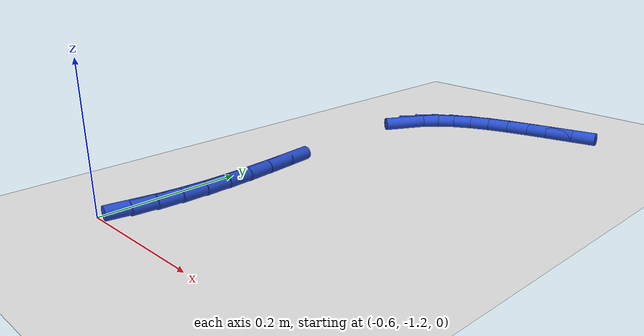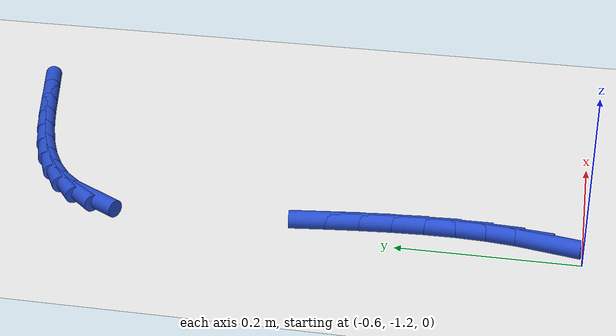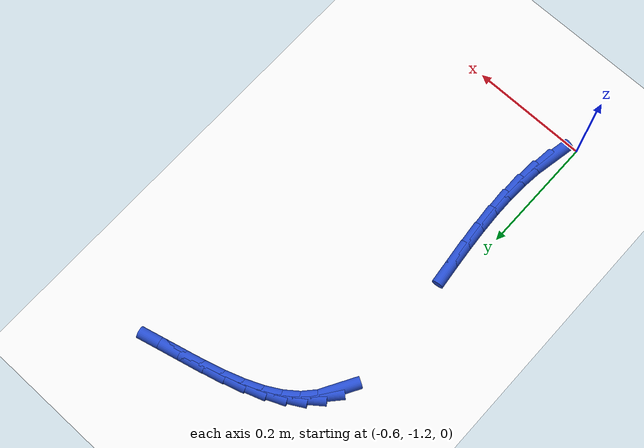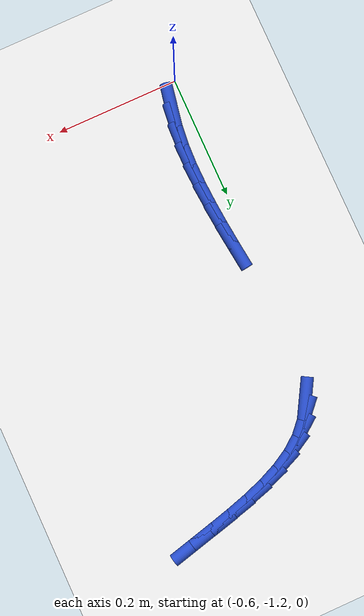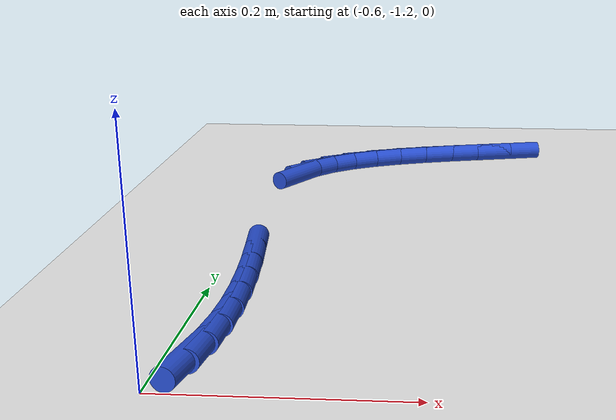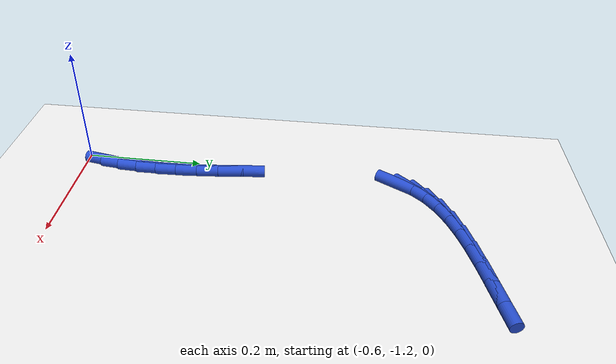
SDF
<sdf version="1.6">
 <world name="default">
  <model name="ground_plane">
   <static>1</static>
   <link name="link">
    <collision name="collision">
     <geometry><plane><normal>0 0 1</normal><size>100 100</size></plane></geometry>
     <surface><friction><ode><mu>100</mu><mu2>50</mu2></ode></friction></surface>
    </collision>
    <visual name="visual">
     <cast_shadows>0</cast_shadows>
     <geometry><plane><normal>0 0 1</normal><size>100 100</size></plane></geometry>
     <material>
      <script><uri>file://media/materials/scripts/gazebo.material</uri><name>Gazebo/WhiteGlow</name></script>
     </material>
    </visual>
   </link>
  </model>
  <model name="line">
   <link name="link_245">
    <pose>-0.5765604240427848 -1.1591229905376372 0.01 0 1.57 1.382976978537338</pose>
    <collision name="collision">
     <geometry><cylinder><radius>0.01</radius><length>0.08</length></cylinder></geometry>
    </collision>
    <visual name="visual">
     <material>
      <script><name>Gazebo/Blue</name><uri>file://media/materials/scripts/gazebo.material</uri></script>
     </material>
     <geometry><cylinder><radius>0.01</radius><length>0.08</length></cylinder></geometry>
    </visual>
   </link>
   <link name="link_246">
    <pose>-0.5707570217833462 -1.1285883262080334 0.01 0 1.57 1.464260709445847</pose>
    <collision name="collision">
     <geometry><cylinder><radius>0.01</radius><length>0.08</length></cylinder></geometry>
    </collision>
    <visual name="visual">
     <material>
      <script><name>Gazebo/Blue</name><uri>file://media/materials/scripts/gazebo.material</uri></script>
     </material>
     <geometry><cylinder><radius>0.01</radius><length>0.08</length></cylinder></geometry>
    </visual>
   </link>
   <link name="link_247">
    <pose>-0.5673265284493424 -1.096509805672998 0.01 0 1.57 1.529926441892967</pose>
    <collision name="collision">
     <geometry><cylinder><radius>0.01</radius><length>0.08</length></cylinder></geometry>
    </collision>
    <visual name="visual">
     <material>
      <script><name>Gazebo/Blue</name><uri>file://media/materials/scripts/gazebo.material</uri></script>
     </material>
     <geometry><cylinder><radius>0.01</radius><length>0.08</length></cylinder></geometry>
    </visual>
   </link>
   <link name="link_248">
    <pose>-0.5659602852207755 -1.0630993263725452 0.01 0 1.57 -1.5595213351210204</pose>
    <collision name="collision">
     <geometry><cylinder><radius>0.01</radius><length>0.08</length></cylinder></geometry>
    </collision>
    <visual name="visual">
     <material>
      <script><name>Gazebo/Blue</name><uri>file://media/materials/scripts/gazebo.material</uri></script>
     </material>
     <geometry><cylinder><radius>0.01</radius><length>0.08</length></cylinder></geometry>
    </visual>
   </link>
   <link name="link_249">
    <pose>-0.566349633277647 -1.0285687857466836 0.01 0 1.57 -1.5190269463461985</pose>
    <collision name="collision">
     <geometry><cylinder><radius>0.01</radius><length>0.08</length></cylinder></geometry>
    </collision>
    <visual name="visual">
     <material>
      <script><name>Gazebo/Blue</name><uri>file://media/materials/scripts/gazebo.material</uri></script>
     </material>
     <geometry><cylinder><radius>0.01</radius><length>0.08</length></cylinder></geometry>
    </visual>
   </link>
   <link name="link_250">
    <pose>-0.5681859137999584 -0.9931300812354266 0.01 0 1.57 -1.4886636304953684</pose>
    <collision name="collision">
     <geometry><cylinder><radius>0.01</radius><length>0.08</length></cylinder></geometry>
    </collision>
    <visual name="visual">
     <material>
      <script><name>Gazebo/Blue</name><uri>file://media/materials/scripts/gazebo.material</uri></script>
     </material>
     <geometry><cylinder><radius>0.01</radius><length>0.08</length></cylinder></geometry>
    </visual>
   </link>
   <link name="link_251">
    <pose>-0.5711604679677119 -0.956995110278786 0.01 0 1.57 -1.4672834788706057</pose>
    <collision name="collision">
     <geometry><cylinder><radius>0.01</radius><length>0.08</length></cylinder></geometry>
    </collision>
    <visual name="visual">
     <material>
      <script><name>Gazebo/Blue</name><uri>file://media/materials/scripts/gazebo.material</uri></script>
     </material>
     <geometry><cylinder><radius>0.01</radius><length>0.08</length></cylinder></geometry>
    </visual>
   </link>
   <link name="link_252">
    <pose>-0.5749646369609089 -0.9203757703167742 0.01 0 1.57 -1.4543100480095463</pose>
    <collision name="collision">
     <geometry><cylinder><radius>0.01</radius><length>0.08</length></cylinder></geometry>
    </collision>
    <visual name="visual">
     <material>
      <script><name>Gazebo/Blue</name><uri>file://media/materials/scripts/gazebo.material</uri></script>
     </material>
     <geometry><cylinder><radius>0.01</radius><length>0.08</length></cylinder></geometry>
    </visual>
   </link>
   <link name="link_260">
    <pose>-0.5740053207353638 -0.6528322272497513 0.01 0 1.57 1.0477815103557888</pose>
    <collision name="collision">
     <geometry><cylinder><radius>0.01</radius><length>0.08</length></cylinder></geometry>
    </collision>
    <visual name="visual">
     <material>
      <script><name>Gazebo/Blue</name><uri>file://media/materials/scripts/gazebo.material</uri></script>
     </material>
     <geometry><cylinder><radius>0.01</radius><length>0.08</length></cylinder></geometry>
    </visual>
   </link>
   <link name="link_261">
    <pose>-0.560422739666561 -0.6292747479242118 0.01 0 1.57 0.8340941841150726</pose>
    <collision name="collision">
     <geometry><cylinder><radius>0.01</radius><length>0.08</length></cylinder></geometry>
    </collision>
    <visual name="visual">
     <material>
      <script><name>Gazebo/Blue</name><uri>file://media/materials/scripts/gazebo.material</uri></script>
     </material>
     <geometry><cylinder><radius>0.01</radius><length>0.08</length></cylinder></geometry>
    </visual>
   </link>
   <link name="link_262">
    <pose>-0.5421295493460911 -0.6091071904334304 0.01 0 1.57 0.6521555216382666</pose>
    <collision name="collision">
     <geometry><cylinder><radius>0.01</radius><length>0.08</length></cylinder></geometry>
    </collision>
    <visual name="visual">
     <material>
      <script><name>Gazebo/Blue</name><uri>file://media/materials/scripts/gazebo.material</uri></script>
     </material>
     <geometry><cylinder><radius>0.01</radius><length>0.08</length></cylinder></geometry>
    </visual>
   </link>
   <link name="link_263">
    <pose>-0.5196336820862731 -0.5919290940680031 0.01 0 1.57 0.5108385229196551</pose>
    <collision name="collision">
     <geometry><cylinder><radius>0.01</radius><length>0.08</length></cylinder></geometry>
    </collision>
    <visual name="visual">
     <material>
      <script><name>Gazebo/Blue</name><uri>file://media/materials/scripts/gazebo.material</uri></script>
     </material>
     <geometry><cylinder><radius>0.01</radius><length>0.08</length></cylinder></geometry>
    </visual>
   </link>
   <link name="link_264">
    <pose>-0.49351199518354383 -0.5772889304410418 0.01 0 1.57 0.40639833221209454</pose>
    <collision name="collision">
     <geometry><cylinder><radius>0.01</radius><length>0.08</length></cylinder></geometry>
    </collision>
    <visual name="visual">
     <material>
      <script><name>Gazebo/Blue</name><uri>file://media/materials/scripts/gazebo.material</uri></script>
     </material>
     <geometry><cylinder><radius>0.01</radius><length>0.08</length></cylinder></geometry>
    </visual>
   </link>
   <link name="link_265">
    <pose>-0.4643413459343406 -0.5647351711656571 0.01 0 1.57 0.3322737905480482</pose>
    <collision name="collision">
     <geometry><cylinder><radius>0.01</radius><length>0.08</length></cylinder></geometry>
    </collision>
    <visual name="visual">
     <material>
      <script><name>Gazebo/Blue</name><uri>file://media/materials/scripts/gazebo.material</uri></script>
     </material>
     <geometry><cylinder><radius>0.01</radius><length>0.08</length></cylinder></geometry>
    </visual>
   </link>
   <link name="link_266">
    <pose>-0.43269859163509894 -0.5538162878549596 0.01 0 1.57 0.2825191050185879</pose>
    <collision name="collision">
     <geometry><cylinder><radius>0.01</radius><length>0.08</length></cylinder></geometry>
    </collision>
    <visual name="visual">
     <material>
      <script><name>Gazebo/Blue</name><uri>file://media/materials/scripts/gazebo.material</uri></script>
     </material>
     <geometry><cylinder><radius>0.01</radius><length>0.08</length></cylinder></geometry>
    </visual>
   </link>
   <link name="link_267">
    <pose>-0.39916058958225614 -0.5440807521220608 0.01 0 1.57 0.25278339063177424</pose>
    <collision name="collision">
     <geometry><cylinder><radius>0.01</radius><length>0.08</length></cylinder></geometry>
    </collision>
    <visual name="visual">
     <material>
      <script><name>Gazebo/Blue</name><uri>file://media/materials/scripts/gazebo.material</uri></script>
     </material>
     <geometry><cylinder><radius>0.01</radius><length>0.08</length></cylinder></geometry>
    </visual>
   </link>
   <link name="link_268">
    <pose>-0.36430419707224904 -0.5350770355800716 0.01 0 1.57 0.2403185233488902</pose>
    <collision name="collision">
     <geometry><cylinder><radius>0.01</radius><length>0.08</length></cylinder></geometry>
    </collision>
    <visual name="visual">
     <material>
      <script><name>Gazebo/Blue</name><uri>file://media/materials/scripts/gazebo.material</uri></script>
     </material>
     <geometry><cylinder><radius>0.01</radius><length>0.08</length></cylinder></geometry>
    </visual>
   </link>
   <link name="link_269">
    <pose>-0.3287062714015144 -0.5263536098421031 0.01 0 1.57 0.24376804035070965</pose>
    <collision name="collision">
     <geometry><cylinder><radius>0.01</radius><length>0.08</length></cylinder></geometry>
    </collision>
    <visual name="visual">
     <material>
      <script><name>Gazebo/Blue</name><uri>file://media/materials/scripts/gazebo.material</uri></script>
     </material>
     <geometry><cylinder><radius>0.01</radius><length>0.08</length></cylinder></geometry>
    </visual>
   </link>
  </model>
 </world>
</sdf>
